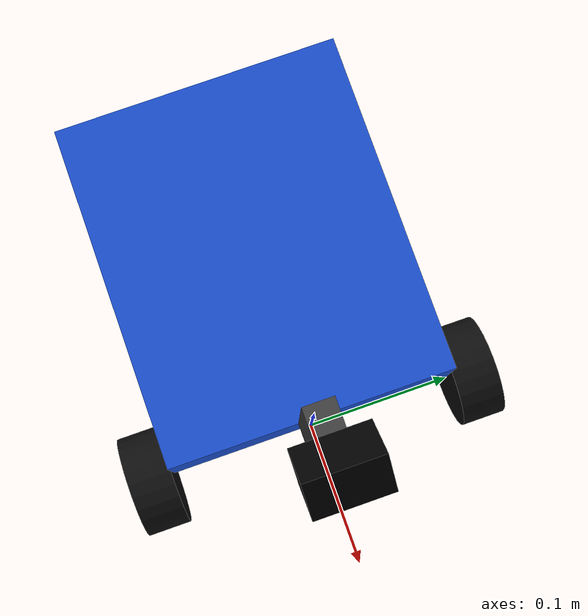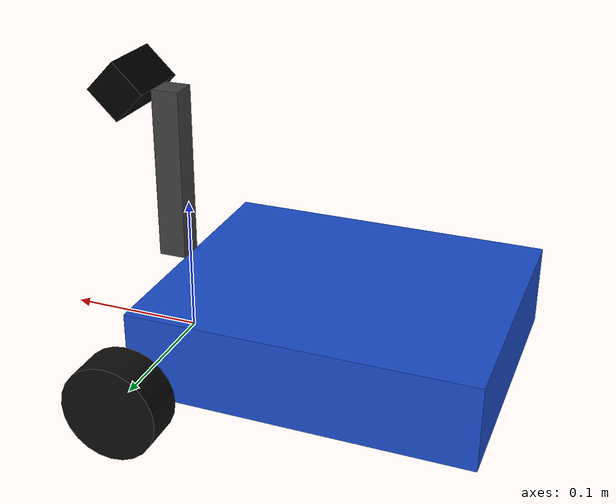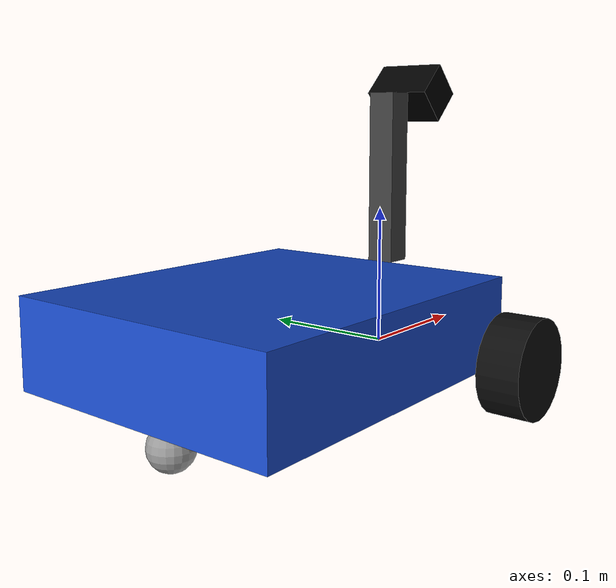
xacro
<?xml version="1.0"?>
<robot name="diffdrive_bot" xmlns:xacro="http://www.ros.org/wiki/xacro">

  <!-- Arguments -->
  <xacro:arg name="body_length" default="0.24" />
  <xacro:arg name="body_width" default="0.20" />
  <xacro:arg name="body_x" default="-0.12" />
  <xacro:arg name="body_height" default="0.06" />
  <xacro:arg name="body_mass" default="1.5" />
  <xacro:arg name="ground_clearance" default="0.035" />
  <xacro:arg name="wheel_radius" default="0.035" />
  <xacro:arg name="wheel_width" default="0.03" />
  <xacro:arg name="wheel_mass" default="0.15" />
  <xacro:arg name="caster_radius" default="0.015" />
  <xacro:arg name="max_linear_velocity" default="0.4" />
  <xacro:arg name="max_angular_velocity" default="2.0" />
  <xacro:arg name="camera_height" default="0.22" />
  <xacro:arg name="camera_forward" default="0.04" />
  <xacro:arg name="camera_pitch" default="0.8" />
  <xacro:arg name="camera_fov" default="1.8" />
  <xacro:arg name="camera_fps" default="20" />
  <xacro:arg name="image_width" default="256" />
  <xacro:arg name="image_height" default="192" />
  <xacro:arg name="sensors_plugin" default="false" />

  <!-- Mathematical constants -->
  <xacro:property name="PI" value="3.14159265"/>

  <!-- Properties -->
  <xacro:property name="body_length" value="$(arg body_length)"/>
  <xacro:property name="body_width" value="$(arg body_width)"/>
  <xacro:property name="body_x" value="$(arg body_x)"/>
  <xacro:property name="body_height" value="$(arg body_height)"/>
  <xacro:property name="body_mass" value="$(arg body_mass)"/>
  <xacro:property name="ground_clearance" value="$(arg ground_clearance)"/>
  <xacro:property name="wheel_radius" value="$(arg wheel_radius)"/>
  <xacro:property name="wheel_width" value="$(arg wheel_width)"/>
  <xacro:property name="wheel_mass" value="$(arg wheel_mass)"/>
  <xacro:property name="caster_radius" value="$(arg caster_radius)"/>
  <xacro:property name="max_linear_velocity" value="$(arg max_linear_velocity)"/>
  <xacro:property name="max_angular_velocity" value="$(arg max_angular_velocity)"/>
  <xacro:property name="camera_height" value="$(arg camera_height)"/>
  <xacro:property name="camera_forward" value="$(arg camera_forward)"/>
  <xacro:property name="camera_pitch" value="$(arg camera_pitch)"/>
  <xacro:property name="camera_fov" value="$(arg camera_fov)"/>
  <xacro:property name="camera_fps" value="$(arg camera_fps)"/>
  <xacro:property name="image_width" value="$(arg image_width)"/>
  <xacro:property name="image_height" value="$(arg image_height)"/>

  <xacro:property name="wheel_separation" value="${body_width + wheel_width}"/>
  <xacro:property name="rear_caster_x" value="${body_x - body_length / 2 + 0.03}"/>
  <xacro:property name="caster_z" value="${caster_radius - wheel_radius}"/>
  <xacro:property name="body_z" value="${ground_clearance + body_height / 2 - wheel_radius}"/>
  <xacro:property name="body_inertia_x" value="${1.0 / 12.0 * body_mass * (body_height * body_height + body_width * body_width)}"/>
  <xacro:property name="body_inertia_y" value="${1.0 / 12.0 * body_mass * (body_length * body_length + body_height * body_height)}"/>
  <xacro:property name="body_inertia_z" value="${1.0 / 12.0 * body_mass * (body_length * body_length + body_width * body_width)}"/>
  <xacro:property name="wheel_inertia_xy" value="${1.0 / 12.0 * wheel_mass * (3 * wheel_radius * wheel_radius + wheel_width * wheel_width)}"/>
  <xacro:property name="wheel_inertia_z" value="${0.5 * wheel_mass * wheel_radius * wheel_radius}"/>
  <xacro:property name="caster_mass" value="0.02"/>
  <xacro:property name="caster_inertia" value="${0.4 * caster_mass * caster_radius * caster_radius}"/>
  <xacro:property name="body_top" value="${ground_clearance + body_height}"/>
  <xacro:property name="mast_height" value="${camera_height - body_top}"/>
  <xacro:property name="mast_z" value="${(body_top + camera_height) / 2 - wheel_radius}"/>
  <xacro:property name="mast_x" value="${camera_forward - 0.03}"/>
  <xacro:property name="camera_z" value="${camera_height - wheel_radius}"/>

  <!-- Links -->

  <!-- Chassis (base_link) -->
  <link name="base_link">
    <visual>
      <origin xyz="${body_x} 0 ${body_z}" rpy="0 0 0"/>
      <geometry>
        <box size="${body_length} ${body_width} ${body_height}"/>
      </geometry>
      <material name="body_material">
        <color rgba="0.1 0.3 0.8 1.0"/>
      </material>
    </visual>
    <collision>
      <origin xyz="${body_x} 0 ${body_z}" rpy="0 0 0"/>
      <geometry>
        <box size="${body_length} ${body_width} ${body_height}"/>
      </geometry>
    </collision>
    <inertial>
      <mass value="${body_mass}"/>
      <origin xyz="${body_x} 0 ${body_z}" rpy="0 0 0"/>
      <inertia ixx="${body_inertia_x}" ixy="0.0" ixz="0.0" iyy="${body_inertia_y}" iyz="0.0" izz="${body_inertia_z}"/>
    </inertial>
  </link>

  <!-- Left Wheel -->
  <link name="left_wheel_link">
    <visual>
      <origin xyz="0 0 0" rpy="1.570795 0 0"/>
      <geometry>
        <cylinder radius="${wheel_radius}" length="${wheel_width}"/>
      </geometry>
      <material name="wheel_material">
        <color rgba="0.05 0.05 0.05 1.0"/>
      </material>
    </visual>
    <collision>
      <origin xyz="0 0 0" rpy="1.570795 0 0"/>
      <geometry>
        <cylinder radius="${wheel_radius}" length="${wheel_width}"/>
      </geometry>
    </collision>
    <inertial>
      <mass value="${wheel_mass}"/>
      <origin xyz="0 0 0" rpy="1.570795 0 0"/>
      <inertia ixx="${wheel_inertia_xy}" ixy="0.0" ixz="0.0" iyy="${wheel_inertia_xy}" iyz="0.0" izz="${wheel_inertia_z}"/>
    </inertial>
  </link>

  <!-- Right Wheel -->
  <link name="right_wheel_link">
    <visual>
      <origin xyz="0 0 0" rpy="1.570795 0 0"/>
      <geometry>
        <cylinder radius="${wheel_radius}" length="${wheel_width}"/>
      </geometry>
      <material name="wheel_material">
        <color rgba="0.05 0.05 0.05 1.0"/>
      </material>
    </visual>
    <collision>
      <origin xyz="0 0 0" rpy="1.570795 0 0"/>
      <geometry>
        <cylinder radius="${wheel_radius}" length="${wheel_width}"/>
      </geometry>
    </collision>
    <inertial>
      <mass value="${wheel_mass}"/>
      <origin xyz="0 0 0" rpy="1.570795 0 0"/>
      <inertia ixx="${wheel_inertia_xy}" ixy="0.0" ixz="0.0" iyy="${wheel_inertia_xy}" iyz="0.0" izz="${wheel_inertia_z}"/>
    </inertial>
  </link>

  <!-- Rear Caster (frictionless ball): with the chassis behind the axle this is the only third support point -->
  <link name="rear_caster_link">
    <visual>
      <origin xyz="0 0 0" rpy="0 0 0"/>
      <geometry>
        <sphere radius="${caster_radius}"/>
      </geometry>
      <material name="caster_material">
        <color rgba="0.6 0.6 0.6 1.0"/>
      </material>
    </visual>
    <collision>
      <origin xyz="0 0 0" rpy="0 0 0"/>
      <geometry>
        <sphere radius="${caster_radius}"/>
      </geometry>
    </collision>
    <inertial>
      <mass value="${caster_mass}"/>
      <origin xyz="0 0 0" rpy="0 0 0"/>
      <inertia ixx="${caster_inertia}" ixy="0.0" ixz="0.0" iyy="${caster_inertia}" iyz="0.0" izz="${caster_inertia}"/>
    </inertial>
  </link>

  <!-- Camera mast -->
  <link name="camera_mast_link">
    <visual>
      <origin xyz="0 0 0" rpy="0 0 0"/>
      <geometry>
        <box size="0.02 0.02 ${mast_height}"/>
      </geometry>
      <material name="mast_material">
        <color rgba="0.25 0.25 0.25 1.0"/>
      </material>
    </visual>
    <inertial>
      <mass value="1e-3"/>
      <origin xyz="0 0 0" rpy="0 0 0"/>
      <inertia ixx="1e-6" ixy="0" ixz="0" iyy="1e-6" iyz="0" izz="1e-6"/>
    </inertial>
  </link>

  <!-- Camera -->
  <link name="camera_link">
    <visual>
      <origin xyz="0 0 0" rpy="0 0 0"/>
      <geometry>
        <box size="0.03 0.05 0.03"/>
      </geometry>
      <material name="camera_material">
        <color rgba="0.0 0.0 0.0 1.0"/>
      </material>
    </visual>
    <inertial>
      <mass value="1e-3"/>
      <origin xyz="0 0 0" rpy="0 0 0"/>
      <inertia ixx="1e-6" ixy="0" ixz="0" iyy="1e-6" iyz="0" izz="1e-6"/>
    </inertial>
  </link>

  <!-- Joints -->

  <joint name="left_wheel_joint" type="continuous">
    <origin xyz="0 ${wheel_separation / 2} 0" rpy="0 0 0"/>
    <parent link="base_link"/>
    <child link="left_wheel_link"/>
    <axis xyz="0 1 0"/>
    <dynamics damping="0.01" friction="0.0"/>
  </joint>

  <joint name="right_wheel_joint" type="continuous">
    <origin xyz="0 ${-wheel_separation / 2} 0" rpy="0 0 0"/>
    <parent link="base_link"/>
    <child link="right_wheel_link"/>
    <axis xyz="0 1 0"/>
    <dynamics damping="0.01" friction="0.0"/>
  </joint>

  <joint name="rear_caster_joint" type="fixed">
    <origin xyz="${rear_caster_x} 0 ${caster_z}" rpy="0 0 0"/>
    <parent link="base_link"/>
    <child link="rear_caster_link"/>
  </joint>

  <joint name="camera_mast_joint" type="fixed">
    <origin xyz="${mast_x} 0 ${mast_z}" rpy="0 0 0"/>
    <parent link="base_link"/>
    <child link="camera_mast_link"/>
  </joint>

  <!-- Camera pitch is positive-down about +y, like vehicle.xacro -->
  <joint name="camera_joint" type="fixed">
    <origin xyz="${camera_forward} 0 ${camera_z}" rpy="0 ${camera_pitch} 0"/>
    <parent link="base_link"/>
    <child link="camera_link"/>
  </joint>

  <!-- Gazebo parameters -->
  <gazebo reference="left_wheel_link">
    <mu1>1.0</mu1>
    <mu2>1.0</mu2>
  </gazebo>

  <gazebo reference="right_wheel_link">
    <mu1>1.0</mu1>
    <mu2>1.0</mu2>
  </gazebo>

  <gazebo reference="rear_caster_link">
    <mu1>0.0</mu1>
    <mu2>0.0</mu2>
  </gazebo>

  <!-- Gazebo plugins -->
  <gazebo>
    <plugin filename="gz-sim-diff-drive-system" name="gz::sim::systems::DiffDrive">
      <left_joint>left_wheel_joint</left_joint>
      <right_joint>right_wheel_joint</right_joint>
      <wheel_separation>${wheel_separation}</wheel_separation>
      <wheel_radius>${wheel_radius}</wheel_radius>
      <odom_publish_frequency>30</odom_publish_frequency>
      <max_linear_velocity>${1.5 * max_linear_velocity}</max_linear_velocity>
      <min_linear_velocity>${-1.5 * max_linear_velocity}</min_linear_velocity>
      <max_angular_velocity>${1.5 * max_angular_velocity}</max_angular_velocity>
      <min_angular_velocity>${-1.5 * max_angular_velocity}</min_angular_velocity>
      <max_linear_acceleration>2.0</max_linear_acceleration>
      <min_linear_acceleration>-2.0</min_linear_acceleration>
      <max_angular_acceleration>8.0</max_angular_acceleration>
      <min_angular_acceleration>-8.0</min_angular_acceleration>
      <topic>cmd_vel</topic>
      <odom_topic>odom</odom_topic>
      <frame_id>odom</frame_id>
      <child_frame_id>base_link</child_frame_id>
    </plugin>

    <plugin filename="gz-sim-joint-state-publisher-system" name="gz::sim::systems::JointStatePublisher">
      <topic>joint_states</topic>
      <joint_name>left_wheel_joint</joint_name>
      <joint_name>right_wheel_joint</joint_name>
    </plugin>

    <xacro:if value="$(arg sensors_plugin)">
      <plugin filename="gz-sim-sensors-system" name="gz::sim::systems::Sensors">
        <render_engine>ogre2</render_engine>
      </plugin>
    </xacro:if>
  </gazebo>

  <!-- Camera sensor -->
  <gazebo reference="camera_link">
    <sensor type="camera" name="front_camera">
      <update_rate>${camera_fps}</update_rate>
      <visualize>false</visualize>
      <topic>camera/image_raw</topic>
      <camera name="front">
        <horizontal_fov>${camera_fov}</horizontal_fov>
        <image>
          <width>${image_width}</width>
          <height>${image_height}</height>
          <format>R8G8B8</format>
        </image>
        <clip>
          <near>0.02</near>
          <far>50</far>
        </clip>
        <noise>
          <type>gaussian</type>
          <mean>0.0</mean>
          <stddev>0.007</stddev>
        </noise>
      </camera>
    </sensor>
  </gazebo>

</robot>
